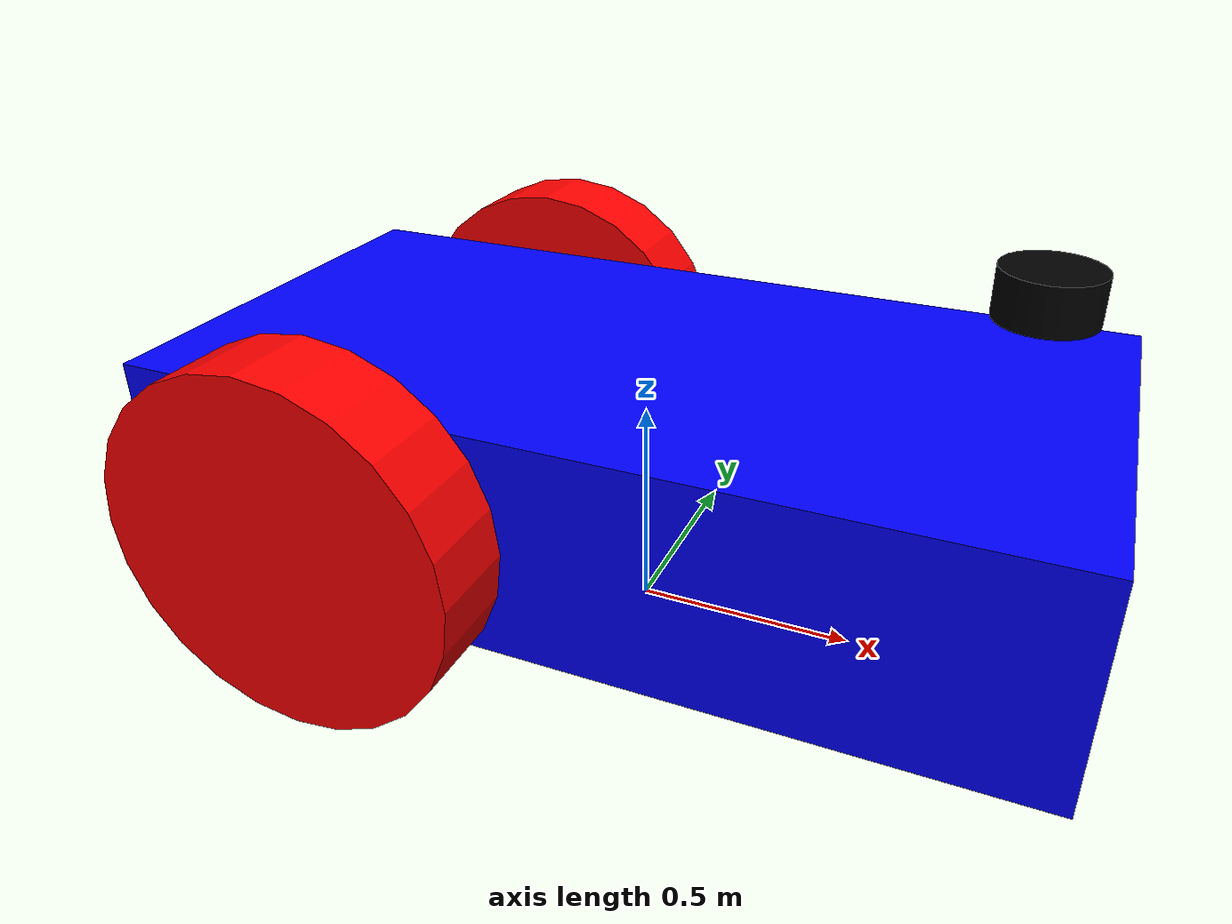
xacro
<?xml version="1.0"?>
<robot name="vehicle_blue" xmlns:xacro="http://ros.org/wiki/xacro">

  <!-- Define robot constants -->
  <xacro:property name="base_width" value="1.0" />
  <xacro:property name="base_length" value="2.0" />
  <xacro:property name="base_height" value="0.5" />

  <xacro:property name="wheel_radius" value="0.4" />
  <xacro:property name="wheel_width" value="0.2" />
  <xacro:property name="wheel_ygap" value="0.1" /> <!-- Gap between chassis and wheel -->
  <xacro:property name="wheel_zoff" value="0.0" /> <!-- Wheel z offset -->
  <xacro:property name="wheel_xoff" value="0.5" /> <!-- Wheel x offset from center (rear) -->

  <xacro:property name="caster_xoff" value="0.8" /> <!-- Caster x offset (front) -->
  <xacro:property name="caster_radius" value="0.2" />

  <!-- Define intertial property macros  -->
  <xacro:macro name="box_inertia" params="m w h d">
    <inertial>
      <origin xyz="0 0 0" rpy="${pi/2} 0 ${pi/2}" />
      <mass value="${m}" />
      <inertia ixx="${(m/12) * (h*h + d*d)}" ixy="0.0" ixz="0.0" iyy="${(m/12) * (w*w + d*d)}"
        iyz="0.0" izz="${(m/12) * (w*w + h*h)}" />
    </inertial>
  </xacro:macro>

  <xacro:macro name="cylinder_inertia" params="m r h">
    <inertial>
      <origin xyz="0 0 0" rpy="${pi/2} 0 0" />
      <mass value="${m}" />
      <inertia ixx="${(m/12) * (3*r*r + h*h)}" ixy="0" ixz="0" iyy="${(m/12) * (3*r*r + h*h)}"
        iyz="0" izz="${(m/2) * (r*r)}" />
    </inertial>
  </xacro:macro>

  <xacro:macro name="sphere_inertia" params="m r">
    <inertial>
      <mass value="${m}" />
      <inertia ixx="${(2/5) * m * (r*r)}" ixy="0.0" ixz="0.0" iyy="${(2/5) * m * (r*r)}" iyz="0.0"
        izz="${(2/5) * m * (r*r)}" />
    </inertial>
  </xacro:macro>

  <!-- Robot Base -->
  <link name="base_link">
  </link>

  <link name="chassis">
    <visual>
      <geometry>
        <box size="${base_length} ${base_width} ${base_height}" />
      </geometry>
      <material name="Blue">
        <color rgba="0 0 1.0 1.0" />
      </material>
    </visual>
    <collision>
      <geometry>
        <box size="${base_length} ${base_width} ${base_height}" />
      </geometry>
    </collision>
    <xacro:box_inertia m="15" w="${base_width}" d="${base_length}" h="${base_height}" />
  </link>

  <joint name="base_joint" type="fixed">
    <parent link="base_link" />
    <child link="chassis" />
    <origin xyz="0.0 0.0 ${wheel_radius}" rpy="0 0 0" />
  </joint>

  <!-- Wheels -->
  <xacro:macro name="wheel" params="prefix x_reflect y_reflect">
    <link name="${prefix}_link">
      <visual>
        <origin xyz="0 0 0" rpy="${pi/2} 0 0" />
        <geometry>
          <cylinder radius="${wheel_radius}" length="${wheel_width}" />
        </geometry>
        <material name="Red">
          <color rgba="1.0 0 0 1.0" />
        </material>
      </visual>
      <collision>
        <origin xyz="0 0 0" rpy="${pi/2} 0 0" />
        <geometry>
          <cylinder radius="${wheel_radius}" length="${wheel_width}" />
        </geometry>
      </collision>
      <xacro:cylinder_inertia m="0.5" r="${wheel_radius}" h="${wheel_width}" />
    </link>

    <joint name="${prefix}_joint" type="continuous">
      <parent link="chassis" />
      <child link="${prefix}_link" />
      <origin xyz="${-wheel_xoff} ${y_reflect*(base_width/2 + wheel_ygap)} ${-wheel_zoff}"
        rpy="0 0 0" />
      <axis xyz="0 1 0" />
    </joint>
  </xacro:macro>

  <xacro:wheel prefix="left_wheel" x_reflect="-1" y_reflect="1" />
  <xacro:wheel prefix="right_wheel" x_reflect="-1" y_reflect="-1" />

  <!-- Caster Wheel -->
  <link name="caster">
    <visual>
      <geometry>
        <sphere radius="${caster_radius}" />
      </geometry>
      <material name="Green">
        <color rgba="0 1.0 0 1.0" />
      </material>
    </visual>
    <collision>
      <geometry>
        <sphere radius="${caster_radius}" />
      </geometry>
    </collision>
    <xacro:sphere_inertia m="0.5" r="${caster_radius}" />
  </link>

  <joint name="caster_joint" type="fixed">
    <parent link="chassis" />
    <child link="caster" />
    <origin xyz="${caster_xoff} 0.0 ${-(base_height/2)}" rpy="0 0 0" />
  </joint>

  <!-- IMU -->
  <link name="imu_link">
    <visual>
      <geometry>
        <box size="0.1 0.1 0.1" />
      </geometry>
      <material name="Black">
        <color rgba="0 0 0 1.0" />
      </material>
    </visual>
  </link>

  <joint name="imu_joint" type="fixed">
    <parent link="chassis" />
    <child link="imu_link" />
    <origin xyz="0 0 0" rpy="0 0 0" />
  </joint>

  <!-- LiDAR -->
  <link name="lidar_link">
    <visual>
      <geometry>
        <cylinder radius="0.1" length="0.1" />
      </geometry>
      <material name="Black">
        <color rgba="0 0 0 1.0" />
      </material>
    </visual>
  </link>

  <joint name="lidar_joint" type="fixed">
    <parent link="chassis" />
    <child link="lidar_link" />
    <origin xyz="0.8 0 0.5" rpy="0 0 0" />
  </joint>

</robot>
